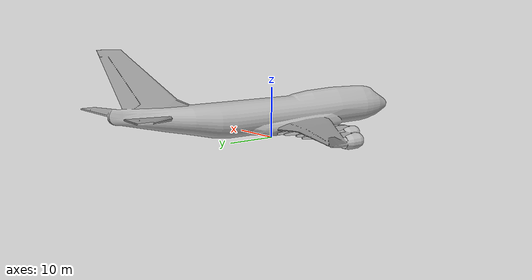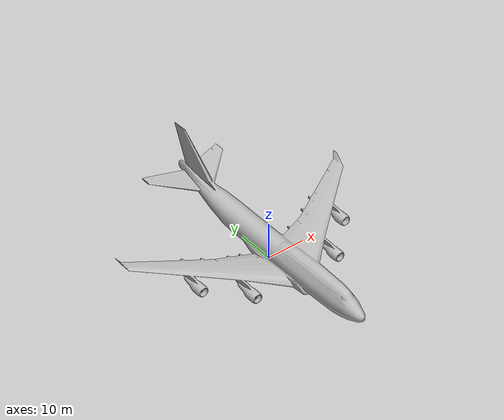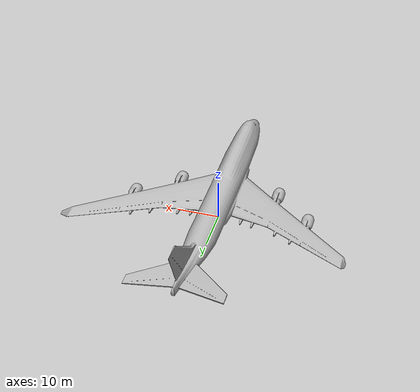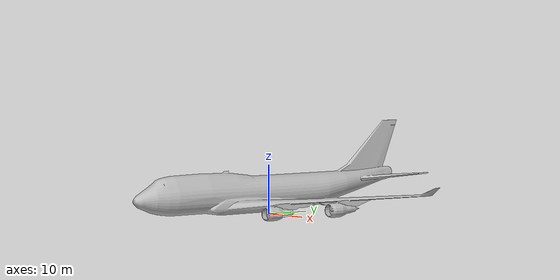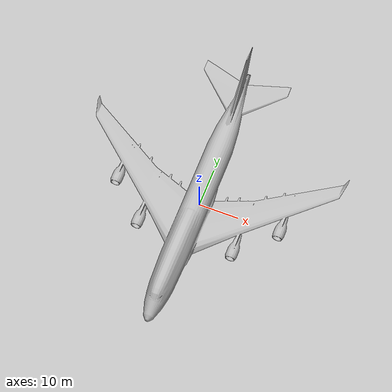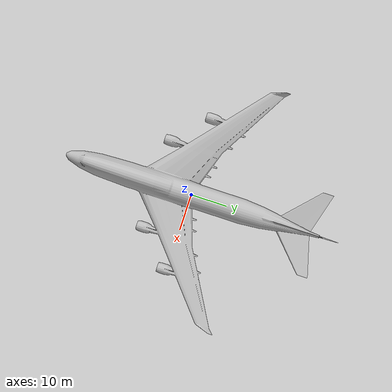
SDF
<?xml version='1.0'?>
<sdf version='1.7'>
  <model name='Boeing747'>
    <link name='link_0'>
      <inertial>
        <mass>1</mass>
        <inertia>
          <ixx>0.1</ixx>
          <ixy>0</ixy>
          <ixz>0</ixz>
          <iyy>0.1</iyy>
          <iyz>0</iyz>
          <izz>0.1</izz>
        </inertia>
      </inertial>
      <pose>0 0 0 0 -0 0</pose>
      <visual name='visual'>
        <pose>0 0 0 0 -0 0</pose>
        <geometry>
          <mesh>
            <uri>model://Boeing747/meshes/Boeing-747.dae</uri>
            <scale>1 1 1</scale>
          </mesh>
        </geometry>
        <material>
          <lighting>1</lighting>
          <script>
            <uri>model://Boeing747/materials/scripts</uri>
            <uri>model://Boeing747/materials/textures</uri>
            <name>boeing747/Diffuse</name>

          </script>
          <shader type='pixel'/>
        </material>
        <transparency>0</transparency>
        <cast_shadows>1</cast_shadows>
      </visual>
      <collision name='collision'>
        <pose>0 0 0 0 0 0</pose>
        <geometry>
          <mesh>
            <uri>model://Boeing747/meshes/Boeing-747.dae</uri>
            <scale>1 1 1</scale>
          </mesh>
        </geometry>
      </collision>

    </link>
    <static>1</static>
    <allow_auto_disable>1</allow_auto_disable>
  </model>
</sdf>
